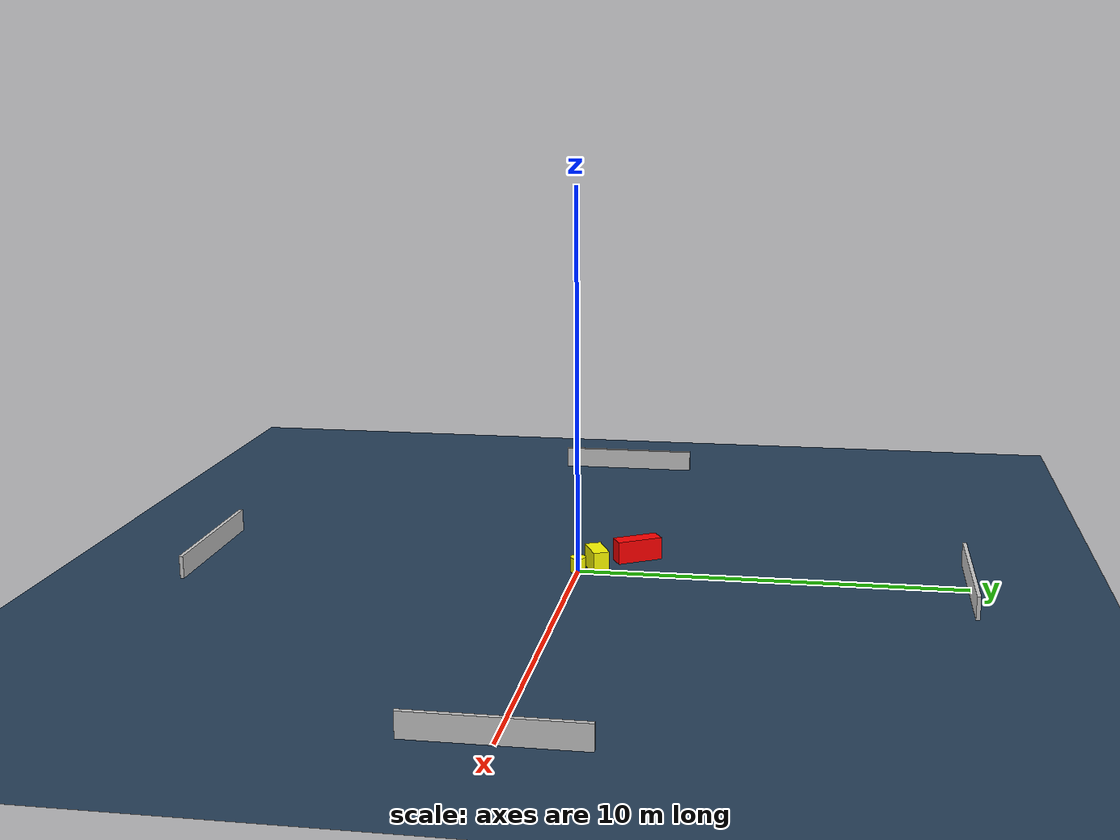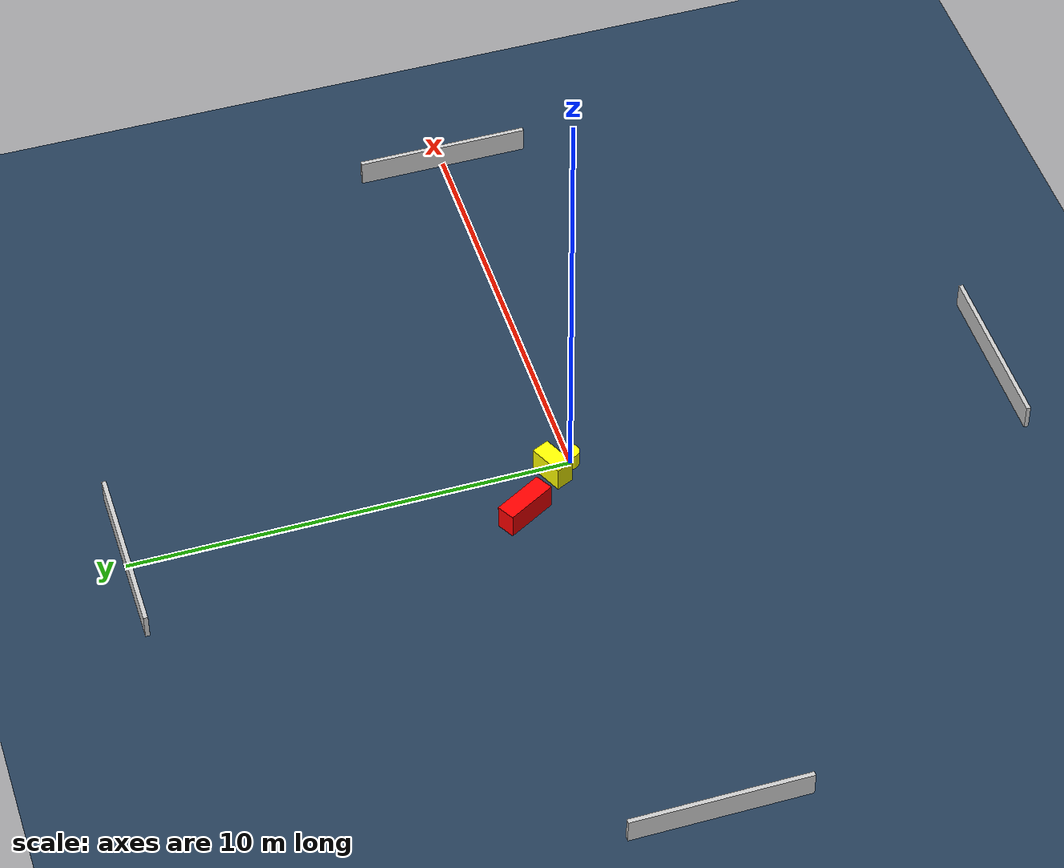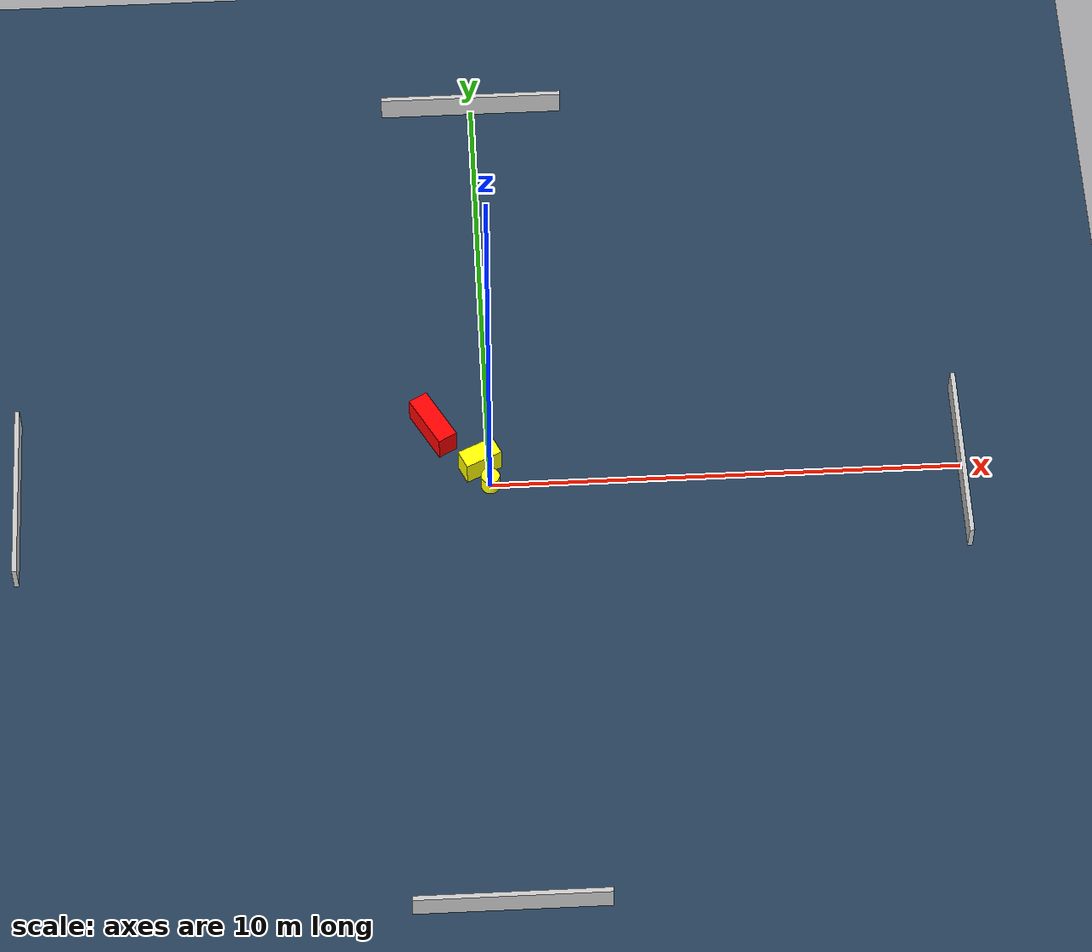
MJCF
<?xml version="1.0" ?>
<mujoco model="generated_environment">
  <option timestep="0.01" integrator="RK4" cone="elliptic"/>
  <default>
    <geom density="1"/>
  </default>
  <asset>
    <texture builtin="gradient" height="3072" name="skybox" rgb1="0.3 0.5 0.7" rgb2="0 0 0" type="skybox" width="512"/>
    <texture builtin="checker" height="300" name="groundplane" rgb1="0.2 0.3 0.4" rgb2="0.1 0.2 0.3" type="2d" width="300"/>
    <material name="groundplane" reflectance="0.2" texrepeat="5 5" texture="groundplane"/>
  </asset>
  <worldbody>
    <light dir="0 0 -1" directional="true" pos="0 0 1.5"/>
    <geom condim="3" friction="0.5 0.005 0.001" material="groundplane" name="floor" pos="0 0 0" size="0 0 0.05" type="plane"/>
    <body name="walls">
      <geom name="wall_1" condim="4" pos="-10.0 0.0 0.3" rgba="0.800000011920929 0.800000011920929 0.800000011920929 1.0" size="0.05 2.0 0.3" type="box"/>
      <geom name="wall_2" condim="4" pos="10.0 0.0 0.3" rgba="0.800000011920929 0.800000011920929 0.800000011920929 1.0" size="0.05 2.0 0.3" type="box"/>
      <geom name="wall_3" condim="4" pos="0.0 -10.0 0.3" rgba="0.800000011920929 0.800000011920929 0.800000011920929 1.0" size="2.0 0.05 0.3" type="box"/>
      <geom name="wall_4" condim="4" pos="0.0 10.0 0.3" rgba="0.800000011920929 0.800000011920929 0.800000011920929 1.0" size="2.0 0.05 0.3" type="box"/>
    </body>
    <body name="robot">
      <joint name="joint_x" type="slide" pos="0 0 0" axis="1 0 0"/>
      <joint name="joint_y" type="slide" pos="0 0 0" axis="0 1 0"/>
      <geom name="robot" type="cylinder" pos="0.0 0.0 0.2" size="0.2 0.2 0.0" mass="5.0" friction="1.0 0.005 0.0001" condim="4" rgba="1.0 1.0 0.0 1.0"/>
    </body>
    <body name="obstacle_1_movable">
      <geom name="obstacle_1_movable" condim="4" pos="-0.20296519785547296 0.4727817609516852 0.3" euler="0 0 24.8223890840301" friction="0.0 0.005 0.001" rgba="1.0 1.0 0.0 1.0" size="0.40908154202829417 0.21134290970712707 0.3" type="box" mass="0.1"/>
      <joint type="free"/>
    </body>
    <body name="obstacle_2_static">
      <geom name="obstacle_2_static" condim="4" pos="-1.1642790503659342 1.4083152564582644 0.3" euler="0 0 209.50299717918838" friction="0.0 0.005 0.001" rgba="1.0 0.0 0.0 1.0" size="0.2160692175526636 0.6103852731458456 0.3" type="box"/>
    </body>
  </worldbody>
  <actuator>
    <motor name="actuator_x" joint="joint_x" gear="1" ctrlrange="-1 1"/>
    <motor name="actuator_y" joint="joint_y" gear="1" ctrlrange="-1 1"/>
  </actuator>
</mujoco>
